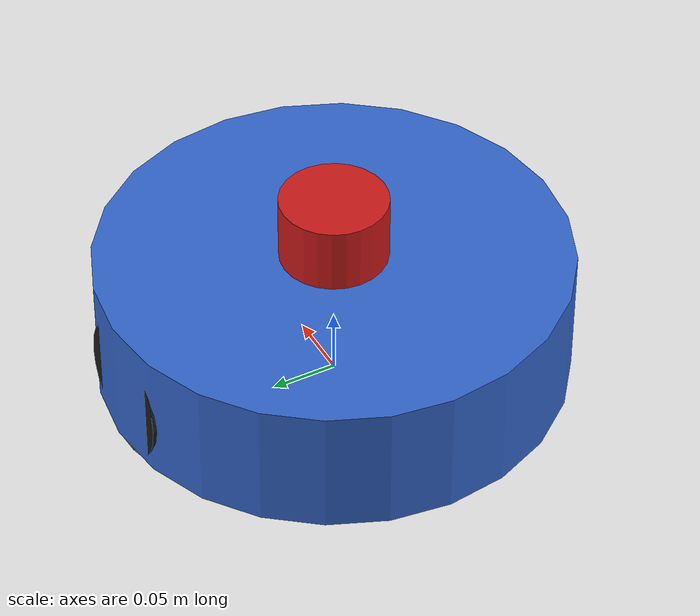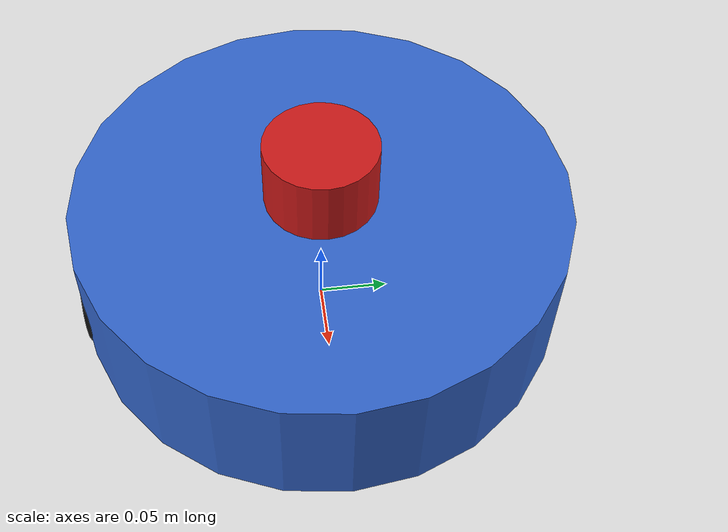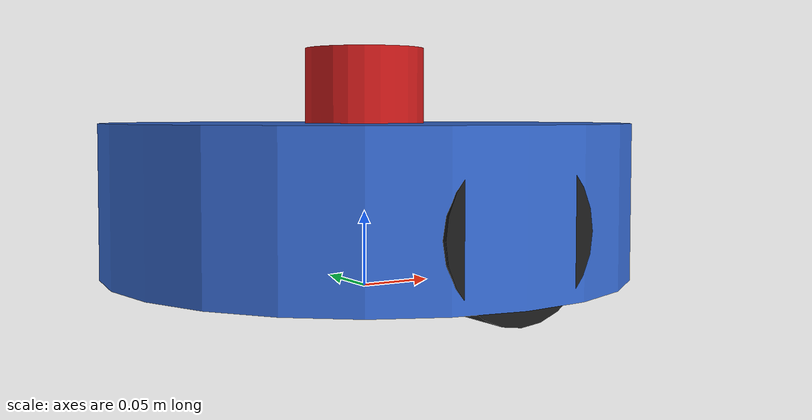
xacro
<?xml version="1.0"?>
<robot name="cleaner_bot" xmlns:xacro="http://www.ros.org/wiki/xacro">

  <!-- ============ PROPERTIES ============ -->
  <!-- Cylinder chassis properties: 0.35m diameter (0.175m radius), 0.10m height -->
  <xacro:property name="chassis_radius" value="0.175"/>
  <xacro:property name="chassis_height" value="0.10"/>

  <!-- Actuated drive wheel properties -->
  <xacro:property name="wheel_radius"   value="0.05"/>
  <xacro:property name="wheel_width"    value="0.04"/>
  <!-- Recessed wheels on both sides (Roomba style) -->
  <xacro:property name="wheel_offset_y" value="0.15"/>

  <!-- ============ BASE FOOTPRINT ============ -->
  <!-- Reference point on the floor directly beneath the robot center -->
  <link name="base_footprint"/>

  <joint name="base_footprint_joint" type="fixed">
    <parent link="base_footprint"/>
    <child  link="base_link"/>
    <!-- The base_link is at Z = 0.06m above the ground, giving 1cm of clearance -->
    <origin xyz="0 0 0.06" rpy="0 0 0"/>
  </joint>

  <!-- ============ CHASSIS (Cylinder) ============ -->
  <link name="base_link">
    <visual>
      <geometry>
        <cylinder radius="${chassis_radius}" length="${chassis_height}"/>
      </geometry>
      <material name="blue">
        <color rgba="0.2 0.4 0.8 1.0"/>
      </material>
    </visual>
    <collision>
      <geometry>
        <cylinder radius="${chassis_radius}" length="${chassis_height}"/>
      </geometry>
    </collision>
    <inertial>
      <!-- Mass is 2.0 kg -->
      <mass value="2.0"/>
      <!-- Cylinder inertia math:
           Ixx = Iyy = (1/12) * M * (3 * R^2 + H^2) = 0.1667 * (3*0.030625 + 0.01) = 0.017
           Izz = (1/2) * M * R^2 = 0.5 * 2.0 * 0.030625 = 0.031 -->
      <inertia ixx="0.017" ixy="0" ixz="0"
               iyy="0.017" iyz="0" izz="0.031"/>
    </inertial>
  </link>

  <!-- ============ LEFT DRIVE WHEEL ============ -->
  <link name="left_wheel">
    <visual>
      <geometry>
        <cylinder radius="${wheel_radius}" length="${wheel_width}"/>
      </geometry>
      <material name="black">
        <color rgba="0.1 0.1 0.1 1.0"/>
      </material>
    </visual>
    <collision>
      <geometry>
        <cylinder radius="${wheel_radius}" length="${wheel_width}"/>
      </geometry>
    </collision>
    <inertial>
      <mass value="0.3"/>
      <!-- Wheel inertia math:
           Ixx = Iyy = (1/12) * M * (3 * R^2 + H^2) = 0.025 * (3*0.0025 + 0.0016) = 0.000227
           Izz = (1/2) * M * R^2 = 0.5 * 0.3 * 0.0025 = 0.000375 -->
      <inertia ixx="0.000227" ixy="0" ixz="0"
               iyy="0.000227" iyz="0" izz="0.000375"/>
    </inertial>
  </link>

  <joint name="left_wheel_joint" type="continuous">
    <parent link="base_link"/>
    <child  link="left_wheel"/>
    <!-- Positioned to touch the ground exactly (Z = 0.05m above ground, base_link is at 0.06m) -->
    <origin xyz="0 ${wheel_offset_y} -0.01" rpy="-1.57079632679 0 0"/>
    <axis xyz="0 0 1"/>
  </joint>

  <!-- ============ RIGHT DRIVE WHEEL ============ -->
  <link name="right_wheel">
    <visual>
      <geometry>
        <cylinder radius="${wheel_radius}" length="${wheel_width}"/>
      </geometry>
      <material name="black">
        <color rgba="0.1 0.1 0.1 1.0"/>
      </material>
    </visual>
    <collision>
      <geometry>
        <cylinder radius="${wheel_radius}" length="${wheel_width}"/>
      </geometry>
    </collision>
    <inertial>
      <mass value="0.3"/>
      <inertia ixx="0.000227" ixy="0" ixz="0"
               iyy="0.000227" iyz="0" izz="0.000375"/>
    </inertial>
  </link>

  <joint name="right_wheel_joint" type="continuous">
    <parent link="base_link"/>
    <child  link="right_wheel"/>
    <origin xyz="0 -${wheel_offset_y} -0.01" rpy="-1.57079632679 0 0"/>
    <axis xyz="0 0 1"/>
  </joint>

  <!-- ============ FRONT PASSIVE CASTER WHEEL ============ -->
  <link name="front_caster">
    <visual>
      <geometry>
        <sphere radius="0.025"/>
      </geometry>
      <material name="gray">
        <color rgba="0.5 0.5 0.5 1.0"/>
      </material>
    </visual>
    <collision>
      <geometry>
        <sphere radius="0.025"/>
      </geometry>
    </collision>
    <inertial>
      <mass value="0.1"/>
      <inertia ixx="0.000025" ixy="0" ixz="0"
               iyy="0.000025" iyz="0" izz="0.000025"/>
    </inertial>
  </link>

  <joint name="front_caster_joint" type="fixed">
    <parent link="base_link"/>
    <child  link="front_caster"/>
    <!-- Placed forward, touching the ground (Z = 0.025m above ground, base_link is at 0.06m) -->
    <origin xyz="0.12 0 -0.035" rpy="0 0 0"/>
  </joint>

  <!-- ============ REAR PASSIVE CASTER WHEEL ============ -->
  <link name="rear_caster">
    <visual>
      <geometry>
        <sphere radius="0.025"/>
      </geometry>
      <material name="gray">
        <color rgba="0.5 0.5 0.5 1.0"/>
      </material>
    </visual>
    <collision>
      <geometry>
        <sphere radius="0.025"/>
      </geometry>
    </collision>
    <inertial>
      <mass value="0.1"/>
      <inertia ixx="0.000025" ixy="0" ixz="0"
               iyy="0.000025" iyz="0" izz="0.000025"/>
    </inertial>
  </link>

  <joint name="rear_caster_joint" type="fixed">
    <parent link="base_link"/>
    <child  link="rear_caster"/>
    <!-- Placed backward, touching the ground -->
    <origin xyz="-0.12 0 -0.035" rpy="0 0 0"/>
  </joint>

  <!-- ============ LiDAR SENSOR (2D Laser Scanner) ============ -->
  <link name="laser_link">
    <visual>
      <geometry>
        <cylinder radius="0.04" length="0.05"/>
      </geometry>
      <material name="red">
        <color rgba="0.8 0.1 0.1 1.0"/>
      </material>
    </visual>
    <collision>
      <geometry>
        <cylinder radius="0.04" length="0.05"/>
      </geometry>
    </collision>
    <inertial>
      <mass value="0.15"/>
      <!-- Ixx = Iyy = (1/12) * M * (3*R^2 + H^2) = 0.0125 * (3*0.0016 + 0.0025) = 0.000091
           Izz = (1/2) * M * R^2 = 0.5 * 0.15 * 0.0016 = 0.00012 -->
      <inertia ixx="0.000091" ixy="0" ixz="0"
               iyy="0.000091" iyz="0" izz="0.00012"/>
    </inertial>
  </link>

  <joint name="laser_joint" type="fixed">
    <parent link="base_link"/>
    <child  link="laser_link"/>
    <!-- Placed flat on top of the base_link cylinder (top is at Z = 0.05m in base_link) -->
    <origin xyz="0.0 0 0.075" rpy="0 0 0"/>
  </joint>

  <!-- ============ GAZEBO PHYSICS & FRICTION ============ -->
  <gazebo reference="left_wheel">
    <mu1 value="1.0"/>
    <mu2 value="1.0"/>
  </gazebo>

  <gazebo reference="right_wheel">
    <mu1 value="1.0"/>
    <mu2 value="1.0"/>
  </gazebo>

  <gazebo reference="front_caster">
    <mu1 value="0.0"/>
    <mu2 value="0.0"/>
  </gazebo>

  <gazebo reference="rear_caster">
    <mu1 value="0.0"/>
    <mu2 value="0.0"/>
  </gazebo>

  <!-- ============ GAZEBO PLUGINS ============ -->

  <!-- Diff-Drive plugin for differential kinematics -->
  <gazebo>
    <plugin filename="gz-sim-diff-drive-system"
            name="gz::sim::systems::DiffDrive">
      <left_joint>left_wheel_joint</left_joint>
      <right_joint>right_wheel_joint</right_joint>
      <wheel_separation>${wheel_offset_y * 2}</wheel_separation>
      <wheel_radius>${wheel_radius}</wheel_radius>
      <odom_publish_frequency>20</odom_publish_frequency>
      <topic>/model/cleaner_bot/cmd_vel</topic>
      <odom_topic>/model/cleaner_bot/odom</odom_topic>
      <tf_topic>/model/cleaner_bot/tf</tf_topic>
      <frame_id>odom</frame_id>
      <child_frame_id>base_footprint</child_frame_id>
    </plugin>
  </gazebo>

  <!-- 2D LiDAR Sensor (gpu_lidar) -->
  <gazebo reference="laser_link">
    <sensor name="laser" type="gpu_lidar">
      <gz_frame_id>laser_link</gz_frame_id>
      <pose>0 0 0 0 0 0</pose>
      <topic>/scan</topic>
      <update_rate>10</update_rate>
      <lidar>
        <scan>
          <horizontal>
            <samples>360</samples>
            <resolution>1</resolution>
            <!-- Complete 360-degree sweep for full coverage -->
            <min_angle>-3.14159265359</min_angle>
            <max_angle>3.14159265359</max_angle>
          </horizontal>
        </scan>
        <range>
          <min>0.20</min>
          <max>12.0</max>
          <resolution>0.01</resolution>
        </range>
        <noise>
          <type>gaussian</type>
          <mean>0.0</mean>
          <stddev>0.01</stddev>
        </noise>
      </lidar>
      <visualize>true</visualize>
    </sensor>
  </gazebo>

  <!-- Joint State Publisher plugin to publish wheel rotations to Gazebo -->
  <gazebo>
    <plugin filename="gz-sim-joint-state-publisher-system"
            name="gz::sim::systems::JointStatePublisher">
      <topic>/model/cleaner_bot/joint_states</topic>
      <joint_name>left_wheel_joint</joint_name>
      <joint_name>right_wheel_joint</joint_name>
    </plugin>
  </gazebo>

</robot>
